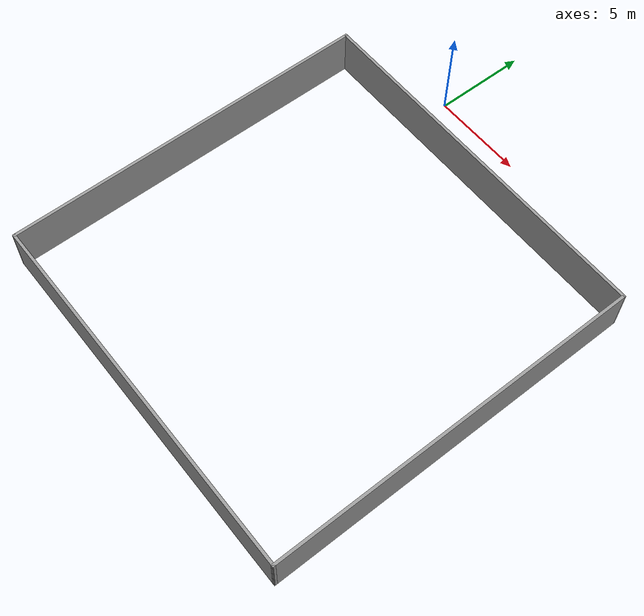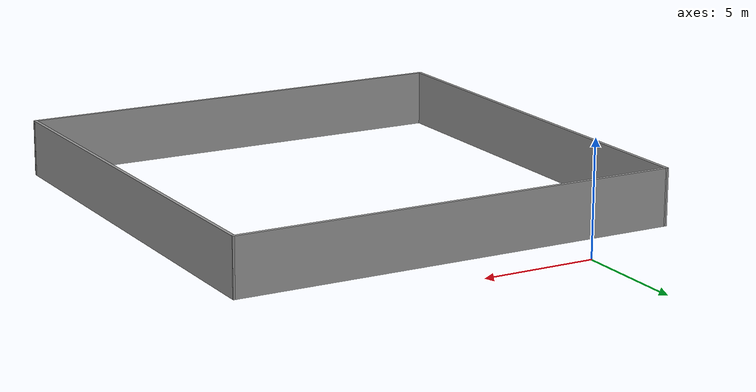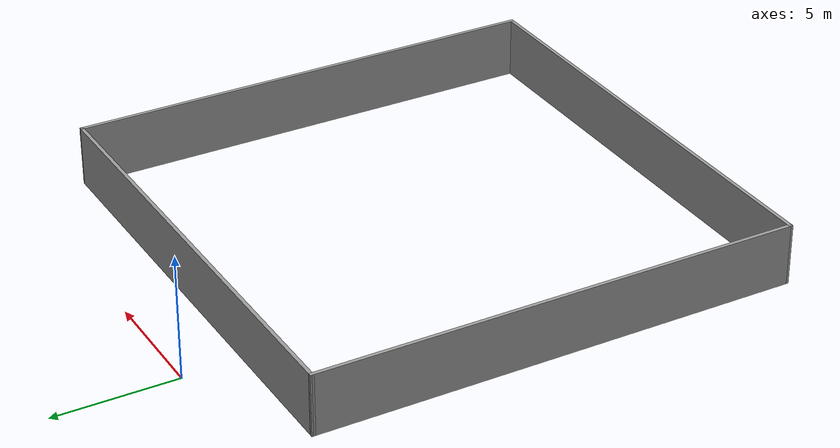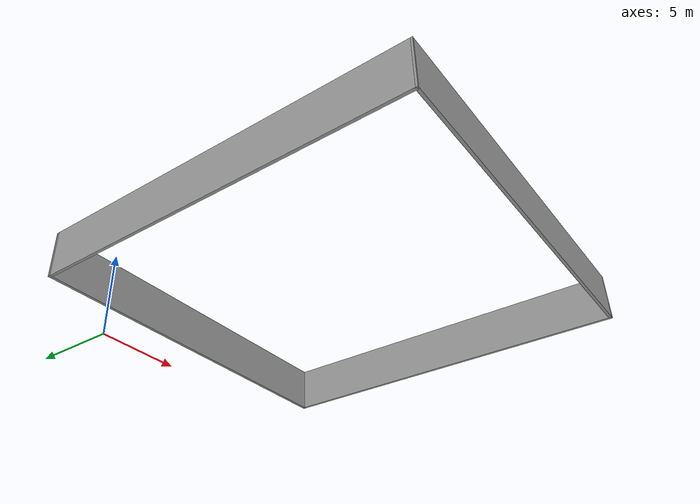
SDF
<?xml version='1.0'?>
<sdf version='1.6'>
  <model name='20x20box'>
    <pose frame=''>4.651 -12.375 0 0 -0 0</pose>
    <link name='Wall_0'>
      <collision name='Wall_0_Collision'>
        <geometry>
          <box>
            <size>20 0.15 2.5</size>
          </box>
        </geometry>
        <pose frame=''>0 0 1.25 0 -0 0</pose>
      </collision>
      <visual name='Wall_0_Visual'>
        <pose frame=''>0 0 1.25 0 -0 0</pose>
        <geometry>
          <box>
            <size>20 0.15 2.5</size>
          </box>
        </geometry>
        <material>
          <script>
            <uri>file://media/materials/scripts/gazebo.material</uri>
            <name>Gazebo/Grey</name>
          </script>
          <ambient>1 1 1 1</ambient>
        </material>
        <meta>
          <layer>0</layer>
        </meta>
      </visual>
      <pose frame=''>-9.92491 0 0 0 -0 -1.56817</pose>
    </link>
    <link name='Wall_2'>
      <collision name='Wall_2_Collision'>
        <geometry>
          <box>
            <size>20 0.15 2.5</size>
          </box>
        </geometry>
        <pose frame=''>0 0 1.25 0 -0 0</pose>
      </collision>
      <visual name='Wall_2_Visual'>
        <pose frame=''>0 0 1.25 0 -0 0</pose>
        <geometry>
          <box>
            <size>20 0.15 2.5</size>
          </box>
        </geometry>
        <material>
          <script>
            <uri>file://media/materials/scripts/gazebo.material</uri>
            <name>Gazebo/Grey</name>
          </script>
          <ambient>1 1 1 1</ambient>
        </material>
        <meta>
          <layer>0</layer>
        </meta>
      </visual>
      <pose frame=''>-0.026 9.925 0 0 -0 0</pose>
    </link>
    <link name='Wall_4'>
      <collision name='Wall_4_Collision'>
        <geometry>
          <box>
            <size>20 0.15 2.5</size>
          </box>
        </geometry>
        <pose frame=''>0 0 1.25 0 -0 0</pose>
      </collision>
      <visual name='Wall_4_Visual'>
        <pose frame=''>0 0 1.25 0 -0 0</pose>
        <geometry>
          <box>
            <size>20 0.15 2.5</size>
          </box>
        </geometry>
        <material>
          <script>
            <uri>file://media/materials/scripts/gazebo.material</uri>
            <name>Gazebo/Grey</name>
          </script>
          <ambient>1 1 1 1</ambient>
        </material>
        <meta>
          <layer>0</layer>
        </meta>
      </visual>
      <pose frame=''>0.026087 -9.925 0 0 -0 0</pose>
    </link>
    <link name='Wall_7'>
      <collision name='Wall_7_Collision'>
        <geometry>
          <box>
            <size>20.0001 0.15 2.5</size>
          </box>
        </geometry>
        <pose frame=''>0 0 1.25 0 -0 0</pose>
      </collision>
      <visual name='Wall_7_Visual'>
        <pose frame=''>0 0 1.25 0 -0 0</pose>
        <geometry>
          <box>
            <size>20.0001 0.15 2.5</size>
          </box>
        </geometry>
        <material>
          <script>
            <uri>file://media/materials/scripts/gazebo.material</uri>
            <name>Gazebo/Grey</name>
          </script>
          <ambient>1 1 1 1</ambient>
        </material>
        <meta>
          <layer>0</layer>
        </meta>
      </visual>
      <pose frame=''>9.925 0 0 0 -0 -1.56818</pose>
    </link>
    <static>1</static>
  </model>
</sdf>
